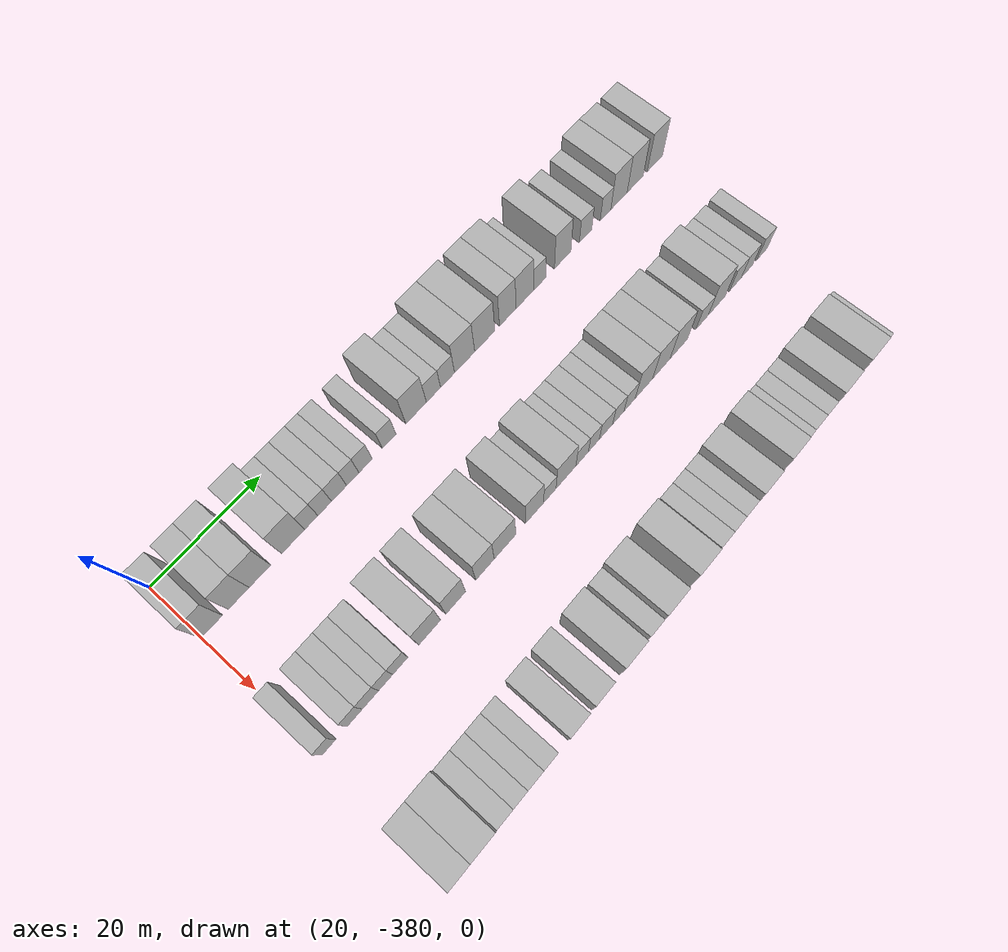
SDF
<sdf version="1.6">
 <world name="default">
  <model name="building_1">
   <static>1</static>
   <pose>25.0000 -378.1062 0 0.000000 0.000000 0.000000</pose>
   <link name="link">
    <pose>0 0 4.50 0 0 0</pose>
    <collision name="collision"><geometry><box><size>10.0000 3.7875 9.0000</size></box></geometry></collision>
    <visual name="visual">
     <cast_shadows>0</cast_shadows>
     <geometry><box><size>10.0000 3.7875 9.0000</size></box></geometry>
     <material>
      <script>
       <uri>model://HANNAS_wall/materials/scripts</uri>
       <uri>model://HANNAS_wall/materials/textures</uri>
       <name>vrc/HANNAS_wall</name>
      </script>
     </material>
    </visual>
   </link>
  </model>
  <model name="building_2">
   <static>1</static>
   <pose>25.0000 -373.3294 0 0.000000 0.000000 0.000000</pose>
   <link name="link">
    <pose>0 0 4.50 0 0 0</pose>
    <collision name="collision"><geometry><box><size>10.0000 3.7662 9.0000</size></box></geometry></collision>
    <visual name="visual">
     <cast_shadows>0</cast_shadows>
     <geometry><box><size>10.0000 3.7662 9.0000</size></box></geometry>
     <material>
      <script>
       <uri>model://HANNAS_wall/materials/scripts</uri>
       <uri>model://HANNAS_wall/materials/textures</uri>
       <name>vrc/HANNAS_wall</name>
      </script>
     </material>
    </visual>
   </link>
  </model>
  <model name="building_3">
   <static>1</static>
   <pose>25.0000 -369.4787 0 0.000000 0.000000 0.000000</pose>
   <link name="link">
    <pose>0 0 4.50 0 0 0</pose>
    <collision name="collision"><geometry><box><size>10.0000 3.9353 9.0000</size></box></geometry></collision>
    <visual name="visual">
     <cast_shadows>0</cast_shadows>
     <geometry><box><size>10.0000 3.9353 9.0000</size></box></geometry>
     <material>
      <script>
       <uri>model://HANNAS_wall/materials/scripts</uri>
       <uri>model://HANNAS_wall/materials/textures</uri>
       <name>vrc/HANNAS_wall</name>
      </script>
     </material>
    </visual>
   </link>
  </model>
  <model name="building_4">
   <static>1</static>
   <pose>25.0000 -363.3445 0 0.000000 0.000000 0.000000</pose>
   <link name="link">
    <pose>0 0 4.50 0 0 0</pose>
    <collision name="collision"><geometry><box><size>10.0000 4.3332 9.0000</size></box></geometry></collision>
    <visual name="visual">
     <cast_shadows>0</cast_shadows>
     <geometry><box><size>10.0000 4.3332 9.0000</size></box></geometry>
     <material>
      <script>
       <uri>model://HANNAS_wall/materials/scripts</uri>
       <uri>model://HANNAS_wall/materials/textures</uri>
       <name>vrc/HANNAS_wall</name>
      </script>
     </material>
    </visual>
   </link>
  </model>
  <model name="building_5">
   <static>1</static>
   <pose>25.0000 -359.9219 0 0.000000 0.000000 0.000000</pose>
   <link name="link">
    <pose>0 0 3.00 0 0 0</pose>
    <collision name="collision"><geometry><box><size>10.0000 2.5119 6.0000</size></box></geometry></collision>
    <visual name="visual">
     <cast_shadows>0</cast_shadows>
     <geometry><box><size>10.0000 2.5119 6.0000</size></box></geometry>
     <material>
      <script>
       <uri>model://HANNAS_wall/materials/scripts</uri>
       <uri>model://HANNAS_wall/materials/textures</uri>
       <name>vrc/HANNAS_wall</name>
      </script>
     </material>
    </visual>
   </link>
  </model>
  <model name="building_6">
   <static>1</static>
   <pose>25.0000 -357.3568 0 0.000000 0.000000 0.000000</pose>
   <link name="link">
    <pose>0 0 3.00 0 0 0</pose>
    <collision name="collision"><geometry><box><size>10.0000 2.6183 6.0000</size></box></geometry></collision>
    <visual name="visual">
     <cast_shadows>0</cast_shadows>
     <geometry><box><size>10.0000 2.6183 6.0000</size></box></geometry>
     <material>
      <script>
       <uri>model://HANNAS_wall/materials/scripts</uri>
       <uri>model://HANNAS_wall/materials/textures</uri>
       <name>vrc/HANNAS_wall</name>
      </script>
     </material>
    </visual>
   </link>
  </model>
  <model name="building_7">
   <static>1</static>
   <pose>25.0000 -354.5845 0 0.000000 0.000000 0.000000</pose>
   <link name="link">
    <pose>0 0 3.00 0 0 0</pose>
    <collision name="collision"><geometry><box><size>10.0000 2.9263 6.0000</size></box></geometry></collision>
    <visual name="visual">
     <cast_shadows>0</cast_shadows>
     <geometry><box><size>10.0000 2.9263 6.0000</size></box></geometry>
     <material>
      <script>
       <uri>model://HANNAS_wall/materials/scripts</uri>
       <uri>model://HANNAS_wall/materials/textures</uri>
       <name>vrc/HANNAS_wall</name>
      </script>
     </material>
    </visual>
   </link>
  </model>
  <model name="building_8">
   <static>1</static>
   <pose>25.0000 -351.9194 0 0.000000 0.000000 0.000000</pose>
   <link name="link">
    <pose>0 0 3.00 0 0 0</pose>
    <collision name="collision"><geometry><box><size>10.0000 2.4038 6.0000</size></box></geometry></collision>
    <visual name="visual">
     <cast_shadows>0</cast_shadows>
     <geometry><box><size>10.0000 2.4038 6.0000</size></box></geometry>
     <material>
      <script>
       <uri>model://HANNAS_wall/materials/scripts</uri>
       <uri>model://HANNAS_wall/materials/textures</uri>
       <name>vrc/HANNAS_wall</name>
      </script>
     </material>
    </visual>
   </link>
  </model>
  <model name="building_9">
   <static>1</static>
   <pose>25.0000 -349.3949 0 0.000000 0.000000 0.000000</pose>
   <link name="link">
    <pose>0 0 3.00 0 0 0</pose>
    <collision name="collision"><geometry><box><size>10.0000 2.6452 6.0000</size></box></geometry></collision>
    <visual name="visual">
     <cast_shadows>0</cast_shadows>
     <geometry><box><size>10.0000 2.6452 6.0000</size></box></geometry>
     <material>
      <script>
       <uri>model://HANNAS_wall/materials/scripts</uri>
       <uri>model://HANNAS_wall/materials/textures</uri>
       <name>vrc/HANNAS_wall</name>
      </script>
     </material>
    </visual>
   </link>
  </model>
  <model name="building_10">
   <static>1</static>
   <pose>25.0000 -344.6926 0 0.000000 0.000000 0.000000</pose>
   <link name="link">
    <pose>0 0 3.00 0 0 0</pose>
    <collision name="collision"><geometry><box><size>10.0000 2.7596 6.0000</size></box></geometry></collision>
    <visual name="visual">
     <cast_shadows>0</cast_shadows>
     <geometry><box><size>10.0000 2.7596 6.0000</size></box></geometry>
     <material>
      <script>
       <uri>model://HANNAS_wall/materials/scripts</uri>
       <uri>model://HANNAS_wall/materials/textures</uri>
       <name>vrc/HANNAS_wall</name>
      </script>
     </material>
    </visual>
   </link>
  </model>
  <model name="building_11">
   <static>1</static>
   <pose>25.0000 -339.1915 0 0.000000 0.000000 0.000000</pose>
   <link name="link">
    <pose>0 0 4.50 0 0 0</pose>
    <collision name="collision"><geometry><box><size>10.0000 4.2426 9.0000</size></box></geometry></collision>
    <visual name="visual">
     <cast_shadows>0</cast_shadows>
     <geometry><box><size>10.0000 4.2426 9.0000</size></box></geometry>
     <material>
      <script>
       <uri>model://HANNAS_wall/materials/scripts</uri>
       <uri>model://HANNAS_wall/materials/textures</uri>
       <name>vrc/HANNAS_wall</name>
      </script>
     </material>
    </visual>
   </link>
  </model>
  <model name="building_12">
   <static>1</static>
   <pose>25.0000 -335.5864 0 0.000000 0.000000 0.000000</pose>
   <link name="link">
    <pose>0 0 3.00 0 0 0</pose>
    <collision name="collision"><geometry><box><size>10.0000 2.9675 6.0000</size></box></geometry></collision>
    <visual name="visual">
     <cast_shadows>0</cast_shadows>
     <geometry><box><size>10.0000 2.9675 6.0000</size></box></geometry>
     <material>
      <script>
       <uri>model://HANNAS_wall/materials/scripts</uri>
       <uri>model://HANNAS_wall/materials/textures</uri>
       <name>vrc/HANNAS_wall</name>
      </script>
     </material>
    </visual>
   </link>
  </model>
  <model name="building_13">
   <static>1</static>
   <pose>25.0000 -332.6247 0 0.000000 0.000000 0.000000</pose>
   <link name="link">
    <pose>0 0 3.00 0 0 0</pose>
    <collision name="collision"><geometry><box><size>10.0000 2.9561 6.0000</size></box></geometry></collision>
    <visual name="visual">
     <cast_shadows>0</cast_shadows>
     <geometry><box><size>10.0000 2.9561 6.0000</size></box></geometry>
     <material>
      <script>
       <uri>model://HANNAS_wall/materials/scripts</uri>
       <uri>model://HANNAS_wall/materials/textures</uri>
       <name>vrc/HANNAS_wall</name>
      </script>
     </material>
    </visual>
   </link>
  </model>
  <model name="building_14">
   <static>1</static>
   <pose>25.0000 -328.9970 0 0.000000 0.000000 0.000000</pose>
   <link name="link">
    <pose>0 0 4.50 0 0 0</pose>
    <collision name="collision"><geometry><box><size>10.0000 4.2992 9.0000</size></box></geometry></collision>
    <visual name="visual">
     <cast_shadows>0</cast_shadows>
     <geometry><box><size>10.0000 4.2992 9.0000</size></box></geometry>
     <material>
      <script>
       <uri>model://HANNAS_wall/materials/scripts</uri>
       <uri>model://HANNAS_wall/materials/textures</uri>
       <name>vrc/HANNAS_wall</name>
      </script>
     </material>
    </visual>
   </link>
  </model>
  <model name="building_15">
   <static>1</static>
   <pose>25.0000 -324.6492 0 0.000000 0.000000 0.000000</pose>
   <link name="link">
    <pose>0 0 4.50 0 0 0</pose>
    <collision name="collision"><geometry><box><size>10.0000 4.3964 9.0000</size></box></geometry></collision>
    <visual name="visual">
     <cast_shadows>0</cast_shadows>
     <geometry><box><size>10.0000 4.3964 9.0000</size></box></geometry>
     <material>
      <script>
       <uri>model://HANNAS_wall/materials/scripts</uri>
       <uri>model://HANNAS_wall/materials/textures</uri>
       <name>vrc/HANNAS_wall</name>
      </script>
     </material>
    </visual>
   </link>
  </model>
  <model name="building_16">
   <static>1</static>
   <pose>25.0000 -319.6189 0 0.000000 0.000000 0.000000</pose>
   <link name="link">
    <pose>0 0 4.50 0 0 0</pose>
    <collision name="collision"><geometry><box><size>10.0000 3.6643 9.0000</size></box></geometry></collision>
    <visual name="visual">
     <cast_shadows>0</cast_shadows>
     <geometry><box><size>10.0000 3.6643 9.0000</size></box></geometry>
     <material>
      <script>
       <uri>model://HANNAS_wall/materials/scripts</uri>
       <uri>model://HANNAS_wall/materials/textures</uri>
       <name>vrc/HANNAS_wall</name>
      </script>
     </material>
    </visual>
   </link>
  </model>
  <model name="building_17">
   <static>1</static>
   <pose>25.0000 -315.7934 0 0.000000 0.000000 0.000000</pose>
   <link name="link">
    <pose>0 0 4.50 0 0 0</pose>
    <collision name="collision"><geometry><box><size>10.0000 3.9866 9.0000</size></box></geometry></collision>
    <visual name="visual">
     <cast_shadows>0</cast_shadows>
     <geometry><box><size>10.0000 3.9866 9.0000</size></box></geometry>
     <material>
      <script>
       <uri>model://HANNAS_wall/materials/scripts</uri>
       <uri>model://HANNAS_wall/materials/textures</uri>
       <name>vrc/HANNAS_wall</name>
      </script>
     </material>
    </visual>
   </link>
  </model>
  <model name="building_18">
   <static>1</static>
   <pose>25.0000 -312.4420 0 0.000000 0.000000 0.000000</pose>
   <link name="link">
    <pose>0 0 3.00 0 0 0</pose>
    <collision name="collision"><geometry><box><size>10.0000 2.7161 6.0000</size></box></geometry></collision>
    <visual name="visual">
     <cast_shadows>0</cast_shadows>
     <geometry><box><size>10.0000 2.7161 6.0000</size></box></geometry>
     <material>
      <script>
       <uri>model://HANNAS_wall/materials/scripts</uri>
       <uri>model://HANNAS_wall/materials/textures</uri>
       <name>vrc/HANNAS_wall</name>
      </script>
     </material>
    </visual>
   </link>
  </model>
  <model name="building_19">
   <static>1</static>
   <pose>25.0000 -307.1703 0 0.000000 0.000000 0.000000</pose>
   <link name="link">
    <pose>0 0 4.50 0 0 0</pose>
    <collision name="collision"><geometry><box><size>10.0000 3.8274 9.0000</size></box></geometry></collision>
    <visual name="visual">
     <cast_shadows>0</cast_shadows>
     <geometry><box><size>10.0000 3.8274 9.0000</size></box></geometry>
     <material>
      <script>
       <uri>model://HANNAS_wall/materials/scripts</uri>
       <uri>model://HANNAS_wall/materials/textures</uri>
       <name>vrc/HANNAS_wall</name>
      </script>
     </material>
    </visual>
   </link>
  </model>
  <model name="building_20">
   <static>1</static>
   <pose>25.0000 -301.7910 0 0.000000 0.000000 0.000000</pose>
   <link name="link">
    <pose>0 0 3.00 0 0 0</pose>
    <collision name="collision"><geometry><box><size>10.0000 2.9312 6.0000</size></box></geometry></collision>
    <visual name="visual">
     <cast_shadows>0</cast_shadows>
     <geometry><box><size>10.0000 2.9312 6.0000</size></box></geometry>
     <material>
      <script>
       <uri>model://HANNAS_wall/materials/scripts</uri>
       <uri>model://HANNAS_wall/materials/textures</uri>
       <name>vrc/HANNAS_wall</name>
      </script>
     </material>
    </visual>
   </link>
  </model>
  <model name="building_21">
   <static>1</static>
   <pose>25.0000 -297.0417 0 0.000000 0.000000 0.000000</pose>
   <link name="link">
    <pose>0 0 3.00 0 0 0</pose>
    <collision name="collision"><geometry><box><size>10.0000 2.5674 6.0000</size></box></geometry></collision>
    <visual name="visual">
     <cast_shadows>0</cast_shadows>
     <geometry><box><size>10.0000 2.5674 6.0000</size></box></geometry>
     <material>
      <script>
       <uri>model://HANNAS_wall/materials/scripts</uri>
       <uri>model://HANNAS_wall/materials/textures</uri>
       <name>vrc/HANNAS_wall</name>
      </script>
     </material>
    </visual>
   </link>
  </model>
  <model name="building_22">
   <static>1</static>
   <pose>25.0000 -293.7621 0 0.000000 0.000000 0.000000</pose>
   <link name="link">
    <pose>0 0 4.50 0 0 0</pose>
    <collision name="collision"><geometry><box><size>10.0000 3.9918 9.0000</size></box></geometry></collision>
    <visual name="visual">
     <cast_shadows>0</cast_shadows>
     <geometry><box><size>10.0000 3.9918 9.0000</size></box></geometry>
     <material>
      <script>
       <uri>model://HANNAS_wall/materials/scripts</uri>
       <uri>model://HANNAS_wall/materials/textures</uri>
       <name>vrc/HANNAS_wall</name>
      </script>
     </material>
    </visual>
   </link>
  </model>
  <model name="building_23">
   <static>1</static>
   <pose>25.0000 -289.7860 0 0.000000 0.000000 0.000000</pose>
   <link name="link">
    <pose>0 0 4.50 0 0 0</pose>
    <collision name="collision"><geometry><box><size>10.0000 3.9604 9.0000</size></box></geometry></collision>
    <visual name="visual">
     <cast_shadows>0</cast_shadows>
     <geometry><box><size>10.0000 3.9604 9.0000</size></box></geometry>
     <material>
      <script>
       <uri>model://HANNAS_wall/materials/scripts</uri>
       <uri>model://HANNAS_wall/materials/textures</uri>
       <name>vrc/HANNAS_wall</name>
      </script>
     </material>
    </visual>
   </link>
  </model>
  <model name="building_24">
   <static>1</static>
   <pose>25.0000 -284.8868 0 0.000000 0.000000 0.000000</pose>
   <link name="link">
    <pose>0 0 4.50 0 0 0</pose>
    <collision name="collision"><geometry><box><size>10.0000 3.8381 9.0000</size></box></geometry></collision>
    <visual name="visual">
     <cast_shadows>0</cast_shadows>
     <geometry><box><size>10.0000 3.8381 9.0000</size></box></geometry>
     <material>
      <script>
       <uri>model://HANNAS_wall/materials/scripts</uri>
       <uri>model://HANNAS_wall/materials/textures</uri>
       <name>vrc/HANNAS_wall</name>
      </script>
     </material>
    </visual>
   </link>
  </model>
  <model name="building_199">
   <static>1</static>
   <pose>47.0000 -378.7807 0 0.000000 0.000000 0.000000</pose>
   <link name="link">
    <pose>0 0 3.00 0 0 0</pose>
    <collision name="collision"><geometry><box><size>10.0000 2.4387 6.0000</size></box></geometry></collision>
    <visual name="visual">
     <cast_shadows>0</cast_shadows>
     <geometry><box><size>10.0000 2.4387 6.0000</size></box></geometry>
     <material>
      <script>
       <uri>model://HANNAS_wall/materials/scripts</uri>
       <uri>model://HANNAS_wall/materials/textures</uri>
       <name>vrc/HANNAS_wall</name>
      </script>
     </material>
    </visual>
   </link>
  </model>
  <model name="building_200">
   <static>1</static>
   <pose>47.0000 -374.1957 0 0.000000 0.000000 0.000000</pose>
   <link name="link">
    <pose>0 0 3.00 0 0 0</pose>
    <collision name="collision"><geometry><box><size>10.0000 2.7313 6.0000</size></box></geometry></collision>
    <visual name="visual">
     <cast_shadows>0</cast_shadows>
     <geometry><box><size>10.0000 2.7313 6.0000</size></box></geometry>
     <material>
      <script>
       <uri>model://HANNAS_wall/materials/scripts</uri>
       <uri>model://HANNAS_wall/materials/textures</uri>
       <name>vrc/HANNAS_wall</name>
      </script>
     </material>
    </visual>
   </link>
  </model>
  <model name="building_201">
   <static>1</static>
   <pose>47.0000 -371.3442 0 0.000000 0.000000 0.000000</pose>
   <link name="link">
    <pose>0 0 3.00 0 0 0</pose>
    <collision name="collision"><geometry><box><size>10.0000 2.9718 6.0000</size></box></geometry></collision>
    <visual name="visual">
     <cast_shadows>0</cast_shadows>
     <geometry><box><size>10.0000 2.9718 6.0000</size></box></geometry>
     <material>
      <script>
       <uri>model://HANNAS_wall/materials/scripts</uri>
       <uri>model://HANNAS_wall/materials/textures</uri>
       <name>vrc/HANNAS_wall</name>
      </script>
     </material>
    </visual>
   </link>
  </model>
  <model name="building_202">
   <static>1</static>
   <pose>47.0000 -368.5612 0 0.000000 0.000000 0.000000</pose>
   <link name="link">
    <pose>0 0 3.00 0 0 0</pose>
    <collision name="collision"><geometry><box><size>10.0000 2.5941 6.0000</size></box></geometry></collision>
    <visual name="visual">
     <cast_shadows>0</cast_shadows>
     <geometry><box><size>10.0000 2.5941 6.0000</size></box></geometry>
     <material>
      <script>
       <uri>model://HANNAS_wall/materials/scripts</uri>
       <uri>model://HANNAS_wall/materials/textures</uri>
       <name>vrc/HANNAS_wall</name>
      </script>
     </material>
    </visual>
   </link>
  </model>
  <model name="building_203">
   <static>1</static>
   <pose>47.0000 -365.8427 0 0.000000 0.000000 0.000000</pose>
   <link name="link">
    <pose>0 0 3.00 0 0 0</pose>
    <collision name="collision"><geometry><box><size>10.0000 2.8429 6.0000</size></box></geometry></collision>
    <visual name="visual">
     <cast_shadows>0</cast_shadows>
     <geometry><box><size>10.0000 2.8429 6.0000</size></box></geometry>
     <material>
      <script>
       <uri>model://HANNAS_wall/materials/scripts</uri>
       <uri>model://HANNAS_wall/materials/textures</uri>
       <name>vrc/HANNAS_wall</name>
      </script>
     </material>
    </visual>
   </link>
  </model>
  <model name="building_204">
   <static>1</static>
   <pose>47.0000 -360.3229 0 0.000000 0.000000 0.000000</pose>
   <link name="link">
    <pose>0 0 4.50 0 0 0</pose>
    <collision name="collision"><geometry><box><size>10.0000 4.1967 9.0000</size></box></geometry></collision>
    <visual name="visual">
     <cast_shadows>0</cast_shadows>
     <geometry><box><size>10.0000 4.1967 9.0000</size></box></geometry>
     <material>
      <script>
       <uri>model://HANNAS_wall/materials/scripts</uri>
       <uri>model://HANNAS_wall/materials/textures</uri>
       <name>vrc/HANNAS_wall</name>
      </script>
     </material>
    </visual>
   </link>
  </model>
  <model name="building_205">
   <static>1</static>
   <pose>47.0000 -355.2836 0 0.000000 0.000000 0.000000</pose>
   <link name="link">
    <pose>0 0 4.50 0 0 0</pose>
    <collision name="collision"><geometry><box><size>10.0000 3.8819 9.0000</size></box></geometry></collision>
    <visual name="visual">
     <cast_shadows>0</cast_shadows>
     <geometry><box><size>10.0000 3.8819 9.0000</size></box></geometry>
     <material>
      <script>
       <uri>model://HANNAS_wall/materials/scripts</uri>
       <uri>model://HANNAS_wall/materials/textures</uri>
       <name>vrc/HANNAS_wall</name>
      </script>
     </material>
    </visual>
   </link>
  </model>
  <model name="building_206">
   <static>1</static>
   <pose>47.0000 -349.4998 0 0.000000 0.000000 0.000000</pose>
   <link name="link">
    <pose>0 0 4.50 0 0 0</pose>
    <collision name="collision"><geometry><box><size>10.0000 3.6858 9.0000</size></box></geometry></collision>
    <visual name="visual">
     <cast_shadows>0</cast_shadows>
     <geometry><box><size>10.0000 3.6858 9.0000</size></box></geometry>
     <material>
      <script>
       <uri>model://HANNAS_wall/materials/scripts</uri>
       <uri>model://HANNAS_wall/materials/textures</uri>
       <name>vrc/HANNAS_wall</name>
      </script>
     </material>
    </visual>
   </link>
  </model>
  <model name="building_207">
   <static>1</static>
   <pose>47.0000 -345.4706 0 0.000000 0.000000 0.000000</pose>
   <link name="link">
    <pose>0 0 4.50 0 0 0</pose>
    <collision name="collision"><geometry><box><size>10.0000 4.3726 9.0000</size></box></geometry></collision>
    <visual name="visual">
     <cast_shadows>0</cast_shadows>
     <geometry><box><size>10.0000 4.3726 9.0000</size></box></geometry>
     <material>
      <script>
       <uri>model://HANNAS_wall/materials/scripts</uri>
       <uri>model://HANNAS_wall/materials/textures</uri>
       <name>vrc/HANNAS_wall</name>
      </script>
     </material>
    </visual>
   </link>
  </model>
  <model name="building_208">
   <static>1</static>
   <pose>47.0000 -339.4201 0 0.000000 0.000000 0.000000</pose>
   <link name="link">
    <pose>0 0 4.50 0 0 0</pose>
    <collision name="collision"><geometry><box><size>10.0000 3.7284 9.0000</size></box></geometry></collision>
    <visual name="visual">
     <cast_shadows>0</cast_shadows>
     <geometry><box><size>10.0000 3.7284 9.0000</size></box></geometry>
     <material>
      <script>
       <uri>model://HANNAS_wall/materials/scripts</uri>
       <uri>model://HANNAS_wall/materials/textures</uri>
       <name>vrc/HANNAS_wall</name>
      </script>
     </material>
    </visual>
   </link>
  </model>
  <model name="building_209">
   <static>1</static>
   <pose>47.0000 -336.2409 0 0.000000 0.000000 0.000000</pose>
   <link name="link">
    <pose>0 0 3.00 0 0 0</pose>
    <collision name="collision"><geometry><box><size>10.0000 2.6300 6.0000</size></box></geometry></collision>
    <visual name="visual">
     <cast_shadows>0</cast_shadows>
     <geometry><box><size>10.0000 2.6300 6.0000</size></box></geometry>
     <material>
      <script>
       <uri>model://HANNAS_wall/materials/scripts</uri>
       <uri>model://HANNAS_wall/materials/textures</uri>
       <name>vrc/HANNAS_wall</name>
      </script>
     </material>
    </visual>
   </link>
  </model>
  <model name="building_210">
   <static>1</static>
   <pose>47.0000 -332.8157 0 0.000000 0.000000 0.000000</pose>
   <link name="link">
    <pose>0 0 4.50 0 0 0</pose>
    <collision name="collision"><geometry><box><size>10.0000 4.2205 9.0000</size></box></geometry></collision>
    <visual name="visual">
     <cast_shadows>0</cast_shadows>
     <geometry><box><size>10.0000 4.2205 9.0000</size></box></geometry>
     <material>
      <script>
       <uri>model://HANNAS_wall/materials/scripts</uri>
       <uri>model://HANNAS_wall/materials/textures</uri>
       <name>vrc/HANNAS_wall</name>
      </script>
     </material>
    </visual>
   </link>
  </model>
  <model name="building_211">
   <static>1</static>
   <pose>47.0000 -329.3583 0 0.000000 0.000000 0.000000</pose>
   <link name="link">
    <pose>0 0 3.00 0 0 0</pose>
    <collision name="collision"><geometry><box><size>10.0000 2.6942 6.0000</size></box></geometry></collision>
    <visual name="visual">
     <cast_shadows>0</cast_shadows>
     <geometry><box><size>10.0000 2.6942 6.0000</size></box></geometry>
     <material>
      <script>
       <uri>model://HANNAS_wall/materials/scripts</uri>
       <uri>model://HANNAS_wall/materials/textures</uri>
       <name>vrc/HANNAS_wall</name>
      </script>
     </material>
    </visual>
   </link>
  </model>
  <model name="building_212">
   <static>1</static>
   <pose>47.0000 -326.7969 0 0.000000 0.000000 0.000000</pose>
   <link name="link">
    <pose>0 0 3.00 0 0 0</pose>
    <collision name="collision"><geometry><box><size>10.0000 2.4287 6.0000</size></box></geometry></collision>
    <visual name="visual">
     <cast_shadows>0</cast_shadows>
     <geometry><box><size>10.0000 2.4287 6.0000</size></box></geometry>
     <material>
      <script>
       <uri>model://HANNAS_wall/materials/scripts</uri>
       <uri>model://HANNAS_wall/materials/textures</uri>
       <name>vrc/HANNAS_wall</name>
      </script>
     </material>
    </visual>
   </link>
  </model>
  <model name="building_213">
   <static>1</static>
   <pose>47.0000 -324.1227 0 0.000000 0.000000 0.000000</pose>
   <link name="link">
    <pose>0 0 3.00 0 0 0</pose>
    <collision name="collision"><geometry><box><size>10.0000 2.9198 6.0000</size></box></geometry></collision>
    <visual name="visual">
     <cast_shadows>0</cast_shadows>
     <geometry><box><size>10.0000 2.9198 6.0000</size></box></geometry>
     <material>
      <script>
       <uri>model://HANNAS_wall/materials/scripts</uri>
       <uri>model://HANNAS_wall/materials/textures</uri>
       <name>vrc/HANNAS_wall</name>
      </script>
     </material>
    </visual>
   </link>
  </model>
  <model name="building_214">
   <static>1</static>
   <pose>47.0000 -321.3952 0 0.000000 0.000000 0.000000</pose>
   <link name="link">
    <pose>0 0 3.00 0 0 0</pose>
    <collision name="collision"><geometry><box><size>10.0000 2.5351 6.0000</size></box></geometry></collision>
    <visual name="visual">
     <cast_shadows>0</cast_shadows>
     <geometry><box><size>10.0000 2.5351 6.0000</size></box></geometry>
     <material>
      <script>
       <uri>model://HANNAS_wall/materials/scripts</uri>
       <uri>model://HANNAS_wall/materials/textures</uri>
       <name>vrc/HANNAS_wall</name>
      </script>
     </material>
    </visual>
   </link>
  </model>
  <model name="building_215">
   <static>1</static>
   <pose>47.0000 -318.8563 0 0.000000 0.000000 0.000000</pose>
   <link name="link">
    <pose>0 0 3.00 0 0 0</pose>
    <collision name="collision"><geometry><box><size>10.0000 2.5427 6.0000</size></box></geometry></collision>
    <visual name="visual">
     <cast_shadows>0</cast_shadows>
     <geometry><box><size>10.0000 2.5427 6.0000</size></box></geometry>
     <material>
      <script>
       <uri>model://HANNAS_wall/materials/scripts</uri>
       <uri>model://HANNAS_wall/materials/textures</uri>
       <name>vrc/HANNAS_wall</name>
      </script>
     </material>
    </visual>
   </link>
  </model>
  <model name="building_216">
   <static>1</static>
   <pose>47.0000 -315.6053 0 0.000000 0.000000 0.000000</pose>
   <link name="link">
    <pose>0 0 4.50 0 0 0</pose>
    <collision name="collision"><geometry><box><size>10.0000 3.9594 9.0000</size></box></geometry></collision>
    <visual name="visual">
     <cast_shadows>0</cast_shadows>
     <geometry><box><size>10.0000 3.9594 9.0000</size></box></geometry>
     <material>
      <script>
       <uri>model://HANNAS_wall/materials/scripts</uri>
       <uri>model://HANNAS_wall/materials/textures</uri>
       <name>vrc/HANNAS_wall</name>
      </script>
     </material>
    </visual>
   </link>
  </model>
  <model name="building_217">
   <static>1</static>
   <pose>47.0000 -311.5968 0 0.000000 0.000000 0.000000</pose>
   <link name="link">
    <pose>0 0 4.50 0 0 0</pose>
    <collision name="collision"><geometry><box><size>10.0000 4.0575 9.0000</size></box></geometry></collision>
    <visual name="visual">
     <cast_shadows>0</cast_shadows>
     <geometry><box><size>10.0000 4.0575 9.0000</size></box></geometry>
     <material>
      <script>
       <uri>model://HANNAS_wall/materials/scripts</uri>
       <uri>model://HANNAS_wall/materials/textures</uri>
       <name>vrc/HANNAS_wall</name>
      </script>
     </material>
    </visual>
   </link>
  </model>
  <model name="building_218">
   <static>1</static>
   <pose>47.0000 -307.5021 0 0.000000 0.000000 0.000000</pose>
   <link name="link">
    <pose>0 0 4.50 0 0 0</pose>
    <collision name="collision"><geometry><box><size>10.0000 4.1319 9.0000</size></box></geometry></collision>
    <visual name="visual">
     <cast_shadows>0</cast_shadows>
     <geometry><box><size>10.0000 4.1319 9.0000</size></box></geometry>
     <material>
      <script>
       <uri>model://HANNAS_wall/materials/scripts</uri>
       <uri>model://HANNAS_wall/materials/textures</uri>
       <name>vrc/HANNAS_wall</name>
      </script>
     </material>
    </visual>
   </link>
  </model>
  <model name="building_219">
   <static>1</static>
   <pose>47.0000 -301.9639 0 0.000000 0.000000 0.000000</pose>
   <link name="link">
    <pose>0 0 3.00 0 0 0</pose>
    <collision name="collision"><geometry><box><size>10.0000 2.9446 6.0000</size></box></geometry></collision>
    <visual name="visual">
     <cast_shadows>0</cast_shadows>
     <geometry><box><size>10.0000 2.9446 6.0000</size></box></geometry>
     <material>
      <script>
       <uri>model://HANNAS_wall/materials/scripts</uri>
       <uri>model://HANNAS_wall/materials/textures</uri>
       <name>vrc/HANNAS_wall</name>
      </script>
     </material>
    </visual>
   </link>
  </model>
  <model name="building_220">
   <static>1</static>
   <pose>47.0000 -298.3832 0 0.000000 0.000000 0.000000</pose>
   <link name="link">
    <pose>0 0 4.50 0 0 0</pose>
    <collision name="collision"><geometry><box><size>10.0000 4.2166 9.0000</size></box></geometry></collision>
    <visual name="visual">
     <cast_shadows>0</cast_shadows>
     <geometry><box><size>10.0000 4.2166 9.0000</size></box></geometry>
     <material>
      <script>
       <uri>model://HANNAS_wall/materials/scripts</uri>
       <uri>model://HANNAS_wall/materials/textures</uri>
       <name>vrc/HANNAS_wall</name>
      </script>
     </material>
    </visual>
   </link>
  </model>
  <model name="building_221">
   <static>1</static>
   <pose>47.0000 -293.8171 0 0.000000 0.000000 0.000000</pose>
   <link name="link">
    <pose>0 0 3.00 0 0 0</pose>
    <collision name="collision"><geometry><box><size>10.0000 2.9157 6.0000</size></box></geometry></collision>
    <visual name="visual">
     <cast_shadows>0</cast_shadows>
     <geometry><box><size>10.0000 2.9157 6.0000</size></box></geometry>
     <material>
      <script>
       <uri>model://HANNAS_wall/materials/scripts</uri>
       <uri>model://HANNAS_wall/materials/textures</uri>
       <name>vrc/HANNAS_wall</name>
      </script>
     </material>
    </visual>
   </link>
  </model>
  <model name="building_222">
   <static>1</static>
   <pose>47.0000 -290.9209 0 0.000000 0.000000 0.000000</pose>
   <link name="link">
    <pose>0 0 3.00 0 0 0</pose>
    <collision name="collision"><geometry><box><size>10.0000 2.8767 6.0000</size></box></geometry></collision>
    <visual name="visual">
     <cast_shadows>0</cast_shadows>
     <geometry><box><size>10.0000 2.8767 6.0000</size></box></geometry>
     <material>
      <script>
       <uri>model://HANNAS_wall/materials/scripts</uri>
       <uri>model://HANNAS_wall/materials/textures</uri>
       <name>vrc/HANNAS_wall</name>
      </script>
     </material>
    </visual>
   </link>
  </model>
  <model name="building_223">
   <static>1</static>
   <pose>47.0000 -287.1485 0 0.000000 0.000000 0.000000</pose>
   <link name="link">
    <pose>0 0 3.00 0 0 0</pose>
    <collision name="collision"><geometry><box><size>10.0000 2.6679 6.0000</size></box></geometry></collision>
    <visual name="visual">
     <cast_shadows>0</cast_shadows>
     <geometry><box><size>10.0000 2.6679 6.0000</size></box></geometry>
     <material>
      <script>
       <uri>model://HANNAS_wall/materials/scripts</uri>
       <uri>model://HANNAS_wall/materials/textures</uri>
       <name>vrc/HANNAS_wall</name>
      </script>
     </material>
    </visual>
   </link>
  </model>
  <model name="building_401">
   <static>1</static>
   <pose>69.0000 -378.1186 0 0.000000 0.000000 0.000000</pose>
   <link name="link">
    <pose>0 0 4.50 0 0 0</pose>
    <collision name="collision"><geometry><box><size>10.0000 3.7627 9.0000</size></box></geometry></collision>
    <visual name="visual">
     <cast_shadows>0</cast_shadows>
     <geometry><box><size>10.0000 3.7627 9.0000</size></box></geometry>
     <material>
      <script>
       <uri>model://HANNAS_wall/materials/scripts</uri>
       <uri>model://HANNAS_wall/materials/textures</uri>
       <name>vrc/HANNAS_wall</name>
      </script>
     </material>
    </visual>
   </link>
  </model>
  <model name="building_402">
   <static>1</static>
   <pose>69.0000 -374.1064 0 0.000000 0.000000 0.000000</pose>
   <link name="link">
    <pose>0 0 4.50 0 0 0</pose>
    <collision name="collision"><geometry><box><size>10.0000 4.2618 9.0000</size></box></geometry></collision>
    <visual name="visual">
     <cast_shadows>0</cast_shadows>
     <geometry><box><size>10.0000 4.2618 9.0000</size></box></geometry>
     <material>
      <script>
       <uri>model://HANNAS_wall/materials/scripts</uri>
       <uri>model://HANNAS_wall/materials/textures</uri>
       <name>vrc/HANNAS_wall</name>
      </script>
     </material>
    </visual>
   </link>
  </model>
  <model name="building_403">
   <static>1</static>
   <pose>69.0000 -370.4970 0 0.000000 0.000000 0.000000</pose>
   <link name="link">
    <pose>0 0 3.00 0 0 0</pose>
    <collision name="collision"><geometry><box><size>10.0000 2.9571 6.0000</size></box></geometry></collision>
    <visual name="visual">
     <cast_shadows>0</cast_shadows>
     <geometry><box><size>10.0000 2.9571 6.0000</size></box></geometry>
     <material>
      <script>
       <uri>model://HANNAS_wall/materials/scripts</uri>
       <uri>model://HANNAS_wall/materials/textures</uri>
       <name>vrc/HANNAS_wall</name>
      </script>
     </material>
    </visual>
   </link>
  </model>
  <model name="building_404">
   <static>1</static>
   <pose>69.0000 -367.7111 0 0.000000 0.000000 0.000000</pose>
   <link name="link">
    <pose>0 0 3.00 0 0 0</pose>
    <collision name="collision"><geometry><box><size>10.0000 2.6147 6.0000</size></box></geometry></collision>
    <visual name="visual">
     <cast_shadows>0</cast_shadows>
     <geometry><box><size>10.0000 2.6147 6.0000</size></box></geometry>
     <material>
      <script>
       <uri>model://HANNAS_wall/materials/scripts</uri>
       <uri>model://HANNAS_wall/materials/textures</uri>
       <name>vrc/HANNAS_wall</name>
      </script>
     </material>
    </visual>
   </link>
  </model>
  <model name="building_405">
   <static>1</static>
   <pose>69.0000 -364.9608 0 0.000000 0.000000 0.000000</pose>
   <link name="link">
    <pose>0 0 3.00 0 0 0</pose>
    <collision name="collision"><geometry><box><size>10.0000 2.8861 6.0000</size></box></geometry></collision>
    <visual name="visual">
     <cast_shadows>0</cast_shadows>
     <geometry><box><size>10.0000 2.8861 6.0000</size></box></geometry>
     <material>
      <script>
       <uri>model://HANNAS_wall/materials/scripts</uri>
       <uri>model://HANNAS_wall/materials/textures</uri>
       <name>vrc/HANNAS_wall</name>
      </script>
     </material>
    </visual>
   </link>
  </model>
  <model name="building_406">
   <static>1</static>
   <pose>69.0000 -362.1817 0 0.000000 0.000000 0.000000</pose>
   <link name="link">
    <pose>0 0 3.00 0 0 0</pose>
    <collision name="collision"><geometry><box><size>10.0000 2.6720 6.0000</size></box></geometry></collision>
    <visual name="visual">
     <cast_shadows>0</cast_shadows>
     <geometry><box><size>10.0000 2.6720 6.0000</size></box></geometry>
     <material>
      <script>
       <uri>model://HANNAS_wall/materials/scripts</uri>
       <uri>model://HANNAS_wall/materials/textures</uri>
       <name>vrc/HANNAS_wall</name>
      </script>
     </material>
    </visual>
   </link>
  </model>
  <model name="building_407">
   <static>1</static>
   <pose>69.0000 -357.0029 0 0.000000 0.000000 0.000000</pose>
   <link name="link">
    <pose>0 0 4.50 0 0 0</pose>
    <collision name="collision"><geometry><box><size>10.0000 3.6855 9.0000</size></box></geometry></collision>
    <visual name="visual">
     <cast_shadows>0</cast_shadows>
     <geometry><box><size>10.0000 3.6855 9.0000</size></box></geometry>
     <material>
      <script>
       <uri>model://HANNAS_wall/materials/scripts</uri>
       <uri>model://HANNAS_wall/materials/textures</uri>
       <name>vrc/HANNAS_wall</name>
      </script>
     </material>
    </visual>
   </link>
  </model>
  <model name="building_408">
   <static>1</static>
   <pose>69.0000 -352.3324 0 0.000000 0.000000 0.000000</pose>
   <link name="link">
    <pose>0 0 4.50 0 0 0</pose>
    <collision name="collision"><geometry><box><size>10.0000 3.6555 9.0000</size></box></geometry></collision>
    <visual name="visual">
     <cast_shadows>0</cast_shadows>
     <geometry><box><size>10.0000 3.6555 9.0000</size></box></geometry>
     <material>
      <script>
       <uri>model://HANNAS_wall/materials/scripts</uri>
       <uri>model://HANNAS_wall/materials/textures</uri>
       <name>vrc/HANNAS_wall</name>
      </script>
     </material>
    </visual>
   </link>
  </model>
  <model name="building_409">
   <static>1</static>
   <pose>69.0000 -346.3417 0 0.000000 0.000000 0.000000</pose>
   <link name="link">
    <pose>0 0 4.50 0 0 0</pose>
    <collision name="collision"><geometry><box><size>10.0000 4.3259 9.0000</size></box></geometry></collision>
    <visual name="visual">
     <cast_shadows>0</cast_shadows>
     <geometry><box><size>10.0000 4.3259 9.0000</size></box></geometry>
     <material>
      <script>
       <uri>model://HANNAS_wall/materials/scripts</uri>
       <uri>model://HANNAS_wall/materials/textures</uri>
       <name>vrc/HANNAS_wall</name>
      </script>
     </material>
    </visual>
   </link>
  </model>
  <model name="building_410">
   <static>1</static>
   <pose>69.0000 -341.7614 0 0.000000 0.000000 0.000000</pose>
   <link name="link">
    <pose>0 0 3.00 0 0 0</pose>
    <collision name="collision"><geometry><box><size>10.0000 2.8348 6.0000</size></box></geometry></collision>
    <visual name="visual">
     <cast_shadows>0</cast_shadows>
     <geometry><box><size>10.0000 2.8348 6.0000</size></box></geometry>
     <material>
      <script>
       <uri>model://HANNAS_wall/materials/scripts</uri>
       <uri>model://HANNAS_wall/materials/textures</uri>
       <name>vrc/HANNAS_wall</name>
      </script>
     </material>
    </visual>
   </link>
  </model>
  <model name="building_411">
   <static>1</static>
   <pose>69.0000 -338.1287 0 0.000000 0.000000 0.000000</pose>
   <link name="link">
    <pose>0 0 4.50 0 0 0</pose>
    <collision name="collision"><geometry><box><size>10.0000 4.4306 9.0000</size></box></geometry></collision>
    <visual name="visual">
     <cast_shadows>0</cast_shadows>
     <geometry><box><size>10.0000 4.4306 9.0000</size></box></geometry>
     <material>
      <script>
       <uri>model://HANNAS_wall/materials/scripts</uri>
       <uri>model://HANNAS_wall/materials/textures</uri>
       <name>vrc/HANNAS_wall</name>
      </script>
     </material>
    </visual>
   </link>
  </model>
  <model name="building_412">
   <static>1</static>
   <pose>69.0000 -331.7204 0 0.000000 0.000000 0.000000</pose>
   <link name="link">
    <pose>0 0 4.50 0 0 0</pose>
    <collision name="collision"><geometry><box><size>10.0000 4.3860 9.0000</size></box></geometry></collision>
    <visual name="visual">
     <cast_shadows>0</cast_shadows>
     <geometry><box><size>10.0000 4.3860 9.0000</size></box></geometry>
     <material>
      <script>
       <uri>model://HANNAS_wall/materials/scripts</uri>
       <uri>model://HANNAS_wall/materials/textures</uri>
       <name>vrc/HANNAS_wall</name>
      </script>
     </material>
    </visual>
   </link>
  </model>
  <model name="building_413">
   <static>1</static>
   <pose>69.0000 -327.1549 0 0.000000 0.000000 0.000000</pose>
   <link name="link">
    <pose>0 0 3.00 0 0 0</pose>
    <collision name="collision"><geometry><box><size>10.0000 2.7449 6.0000</size></box></geometry></collision>
    <visual name="visual">
     <cast_shadows>0</cast_shadows>
     <geometry><box><size>10.0000 2.7449 6.0000</size></box></geometry>
     <material>
      <script>
       <uri>model://HANNAS_wall/materials/scripts</uri>
       <uri>model://HANNAS_wall/materials/textures</uri>
       <name>vrc/HANNAS_wall</name>
      </script>
     </material>
    </visual>
   </link>
  </model>
  <model name="building_414">
   <static>1</static>
   <pose>69.0000 -324.4833 0 0.000000 0.000000 0.000000</pose>
   <link name="link">
    <pose>0 0 3.00 0 0 0</pose>
    <collision name="collision"><geometry><box><size>10.0000 2.5982 6.0000</size></box></geometry></collision>
    <visual name="visual">
     <cast_shadows>0</cast_shadows>
     <geometry><box><size>10.0000 2.5982 6.0000</size></box></geometry>
     <material>
      <script>
       <uri>model://HANNAS_wall/materials/scripts</uri>
       <uri>model://HANNAS_wall/materials/textures</uri>
       <name>vrc/HANNAS_wall</name>
      </script>
     </material>
    </visual>
   </link>
  </model>
  <model name="building_415">
   <static>1</static>
   <pose>69.0000 -321.7729 0 0.000000 0.000000 0.000000</pose>
   <link name="link">
    <pose>0 0 3.00 0 0 0</pose>
    <collision name="collision"><geometry><box><size>10.0000 2.8226 6.0000</size></box></geometry></collision>
    <visual name="visual">
     <cast_shadows>0</cast_shadows>
     <geometry><box><size>10.0000 2.8226 6.0000</size></box></geometry>
     <material>
      <script>
       <uri>model://HANNAS_wall/materials/scripts</uri>
       <uri>model://HANNAS_wall/materials/textures</uri>
       <name>vrc/HANNAS_wall</name>
      </script>
     </material>
    </visual>
   </link>
  </model>
  <model name="building_416">
   <static>1</static>
   <pose>69.0000 -318.3202 0 0.000000 0.000000 0.000000</pose>
   <link name="link">
    <pose>0 0 4.50 0 0 0</pose>
    <collision name="collision"><geometry><box><size>10.0000 4.0829 9.0000</size></box></geometry></collision>
    <visual name="visual">
     <cast_shadows>0</cast_shadows>
     <geometry><box><size>10.0000 4.0829 9.0000</size></box></geometry>
     <material>
      <script>
       <uri>model://HANNAS_wall/materials/scripts</uri>
       <uri>model://HANNAS_wall/materials/textures</uri>
       <name>vrc/HANNAS_wall</name>
      </script>
     </material>
    </visual>
   </link>
  </model>
  <model name="building_417">
   <static>1</static>
   <pose>69.0000 -312.3143 0 0.000000 0.000000 0.000000</pose>
   <link name="link">
    <pose>0 0 4.50 0 0 0</pose>
    <collision name="collision"><geometry><box><size>10.0000 3.9290 9.0000</size></box></geometry></collision>
    <visual name="visual">
     <cast_shadows>0</cast_shadows>
     <geometry><box><size>10.0000 3.9290 9.0000</size></box></geometry>
     <material>
      <script>
       <uri>model://HANNAS_wall/materials/scripts</uri>
       <uri>model://HANNAS_wall/materials/textures</uri>
       <name>vrc/HANNAS_wall</name>
      </script>
     </material>
    </visual>
   </link>
  </model>
  <model name="building_418">
   <static>1</static>
   <pose>69.0000 -308.9857 0 0.000000 0.000000 0.000000</pose>
   <link name="link">
    <pose>0 0 3.00 0 0 0</pose>
    <collision name="collision"><geometry><box><size>10.0000 2.7282 6.0000</size></box></geometry></collision>
    <visual name="visual">
     <cast_shadows>0</cast_shadows>
     <geometry><box><size>10.0000 2.7282 6.0000</size></box></geometry>
     <material>
      <script>
       <uri>model://HANNAS_wall/materials/scripts</uri>
       <uri>model://HANNAS_wall/materials/textures</uri>
       <name>vrc/HANNAS_wall</name>
      </script>
     </material>
    </visual>
   </link>
  </model>
  <model name="building_419">
   <static>1</static>
   <pose>69.0000 -306.2544 0 0.000000 0.000000 0.000000</pose>
   <link name="link">
    <pose>0 0 3.00 0 0 0</pose>
    <collision name="collision"><geometry><box><size>10.0000 2.7343 6.0000</size></box></geometry></collision>
    <visual name="visual">
     <cast_shadows>0</cast_shadows>
     <geometry><box><size>10.0000 2.7343 6.0000</size></box></geometry>
     <material>
      <script>
       <uri>model://HANNAS_wall/materials/scripts</uri>
       <uri>model://HANNAS_wall/materials/textures</uri>
       <name>vrc/HANNAS_wall</name>
      </script>
     </material>
    </visual>
   </link>
  </model>
  <model name="building_420">
   <static>1</static>
   <pose>69.0000 -303.6125 0 0.000000 0.000000 0.000000</pose>
   <link name="link">
    <pose>0 0 3.00 0 0 0</pose>
    <collision name="collision"><geometry><box><size>10.0000 2.5496 6.0000</size></box></geometry></collision>
    <visual name="visual">
     <cast_shadows>0</cast_shadows>
     <geometry><box><size>10.0000 2.5496 6.0000</size></box></geometry>
     <material>
      <script>
       <uri>model://HANNAS_wall/materials/scripts</uri>
       <uri>model://HANNAS_wall/materials/textures</uri>
       <name>vrc/HANNAS_wall</name>
      </script>
     </material>
    </visual>
   </link>
  </model>
  <model name="building_421">
   <static>1</static>
   <pose>69.0000 -300.2347 0 0.000000 0.000000 0.000000</pose>
   <link name="link">
    <pose>0 0 4.50 0 0 0</pose>
    <collision name="collision"><geometry><box><size>10.0000 4.2061 9.0000</size></box></geometry></collision>
    <visual name="visual">
     <cast_shadows>0</cast_shadows>
     <geometry><box><size>10.0000 4.2061 9.0000</size></box></geometry>
     <material>
      <script>
       <uri>model://HANNAS_wall/materials/scripts</uri>
       <uri>model://HANNAS_wall/materials/textures</uri>
       <name>vrc/HANNAS_wall</name>
      </script>
     </material>
    </visual>
   </link>
  </model>
  <model name="building_422">
   <static>1</static>
   <pose>69.0000 -293.9268 0 0.000000 0.000000 0.000000</pose>
   <link name="link">
    <pose>0 0 4.50 0 0 0</pose>
    <collision name="collision"><geometry><box><size>10.0000 4.4097 9.0000</size></box></geometry></collision>
    <visual name="visual">
     <cast_shadows>0</cast_shadows>
     <geometry><box><size>10.0000 4.4097 9.0000</size></box></geometry>
     <material>
      <script>
       <uri>model://HANNAS_wall/materials/scripts</uri>
       <uri>model://HANNAS_wall/materials/textures</uri>
       <name>vrc/HANNAS_wall</name>
      </script>
     </material>
    </visual>
   </link>
  </model>
  <model name="building_423">
   <static>1</static>
   <pose>69.0000 -290.4075 0 0.000000 0.000000 0.000000</pose>
   <link name="link">
    <pose>0 0 3.00 0 0 0</pose>
    <collision name="collision"><geometry><box><size>10.0000 2.6290 6.0000</size></box></geometry></collision>
    <visual name="visual">
     <cast_shadows>0</cast_shadows>
     <geometry><box><size>10.0000 2.6290 6.0000</size></box></geometry>
     <material>
      <script>
       <uri>model://HANNAS_wall/materials/scripts</uri>
       <uri>model://HANNAS_wall/materials/textures</uri>
       <name>vrc/HANNAS_wall</name>
      </script>
     </material>
    </visual>
   </link>
  </model>
 </world>
</sdf>
